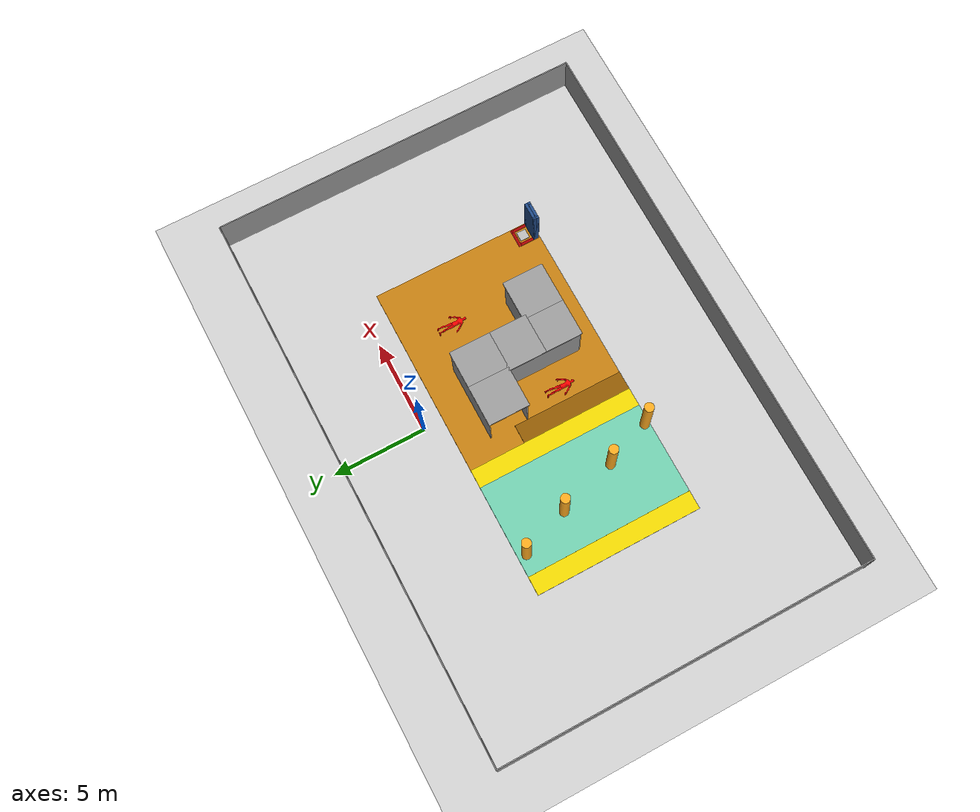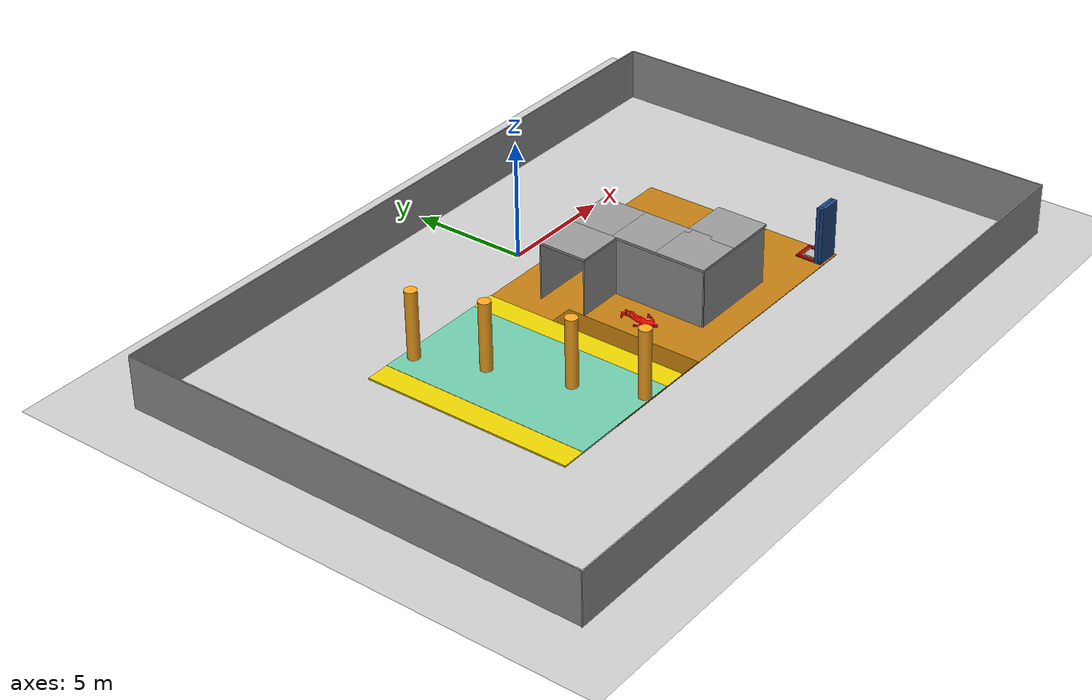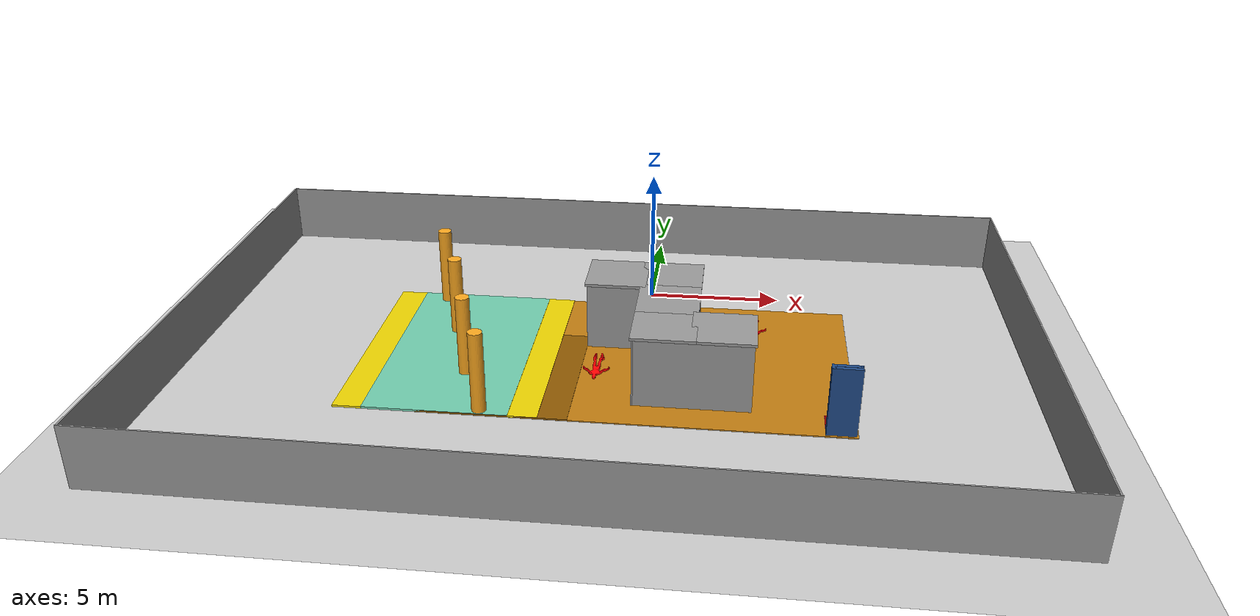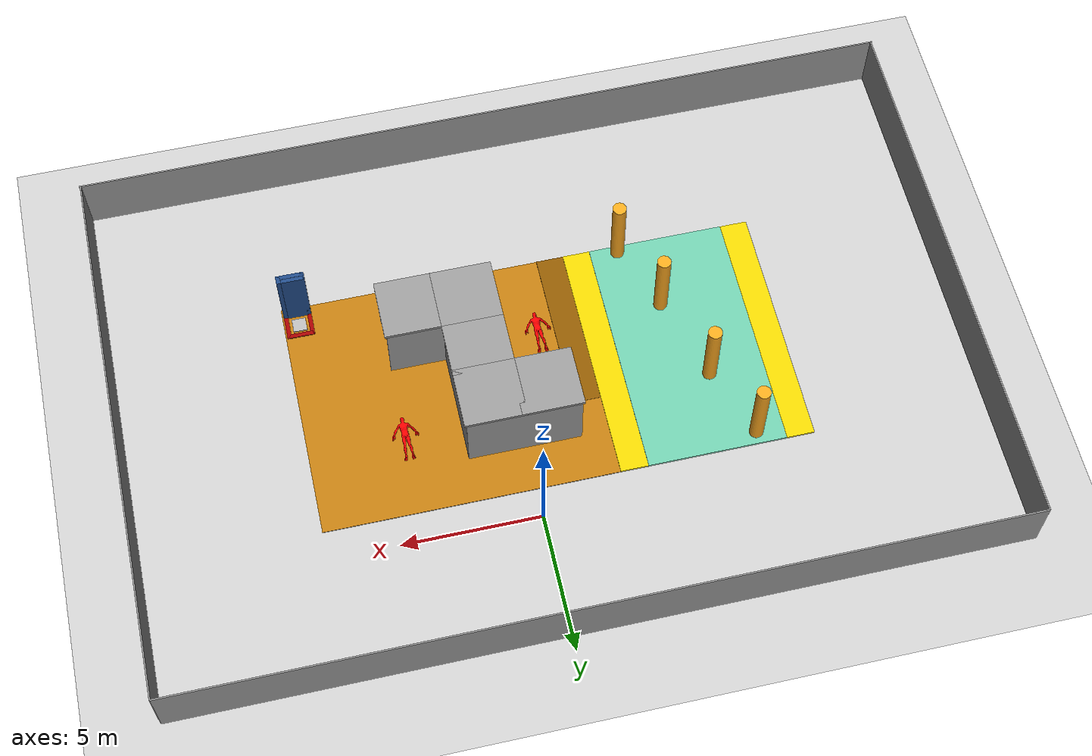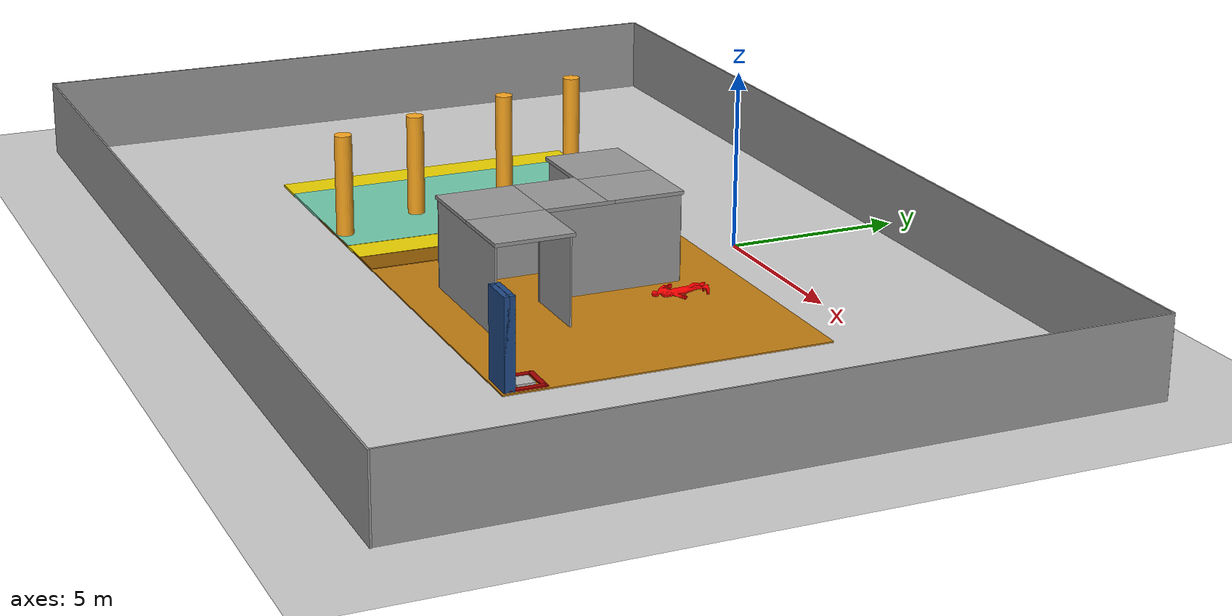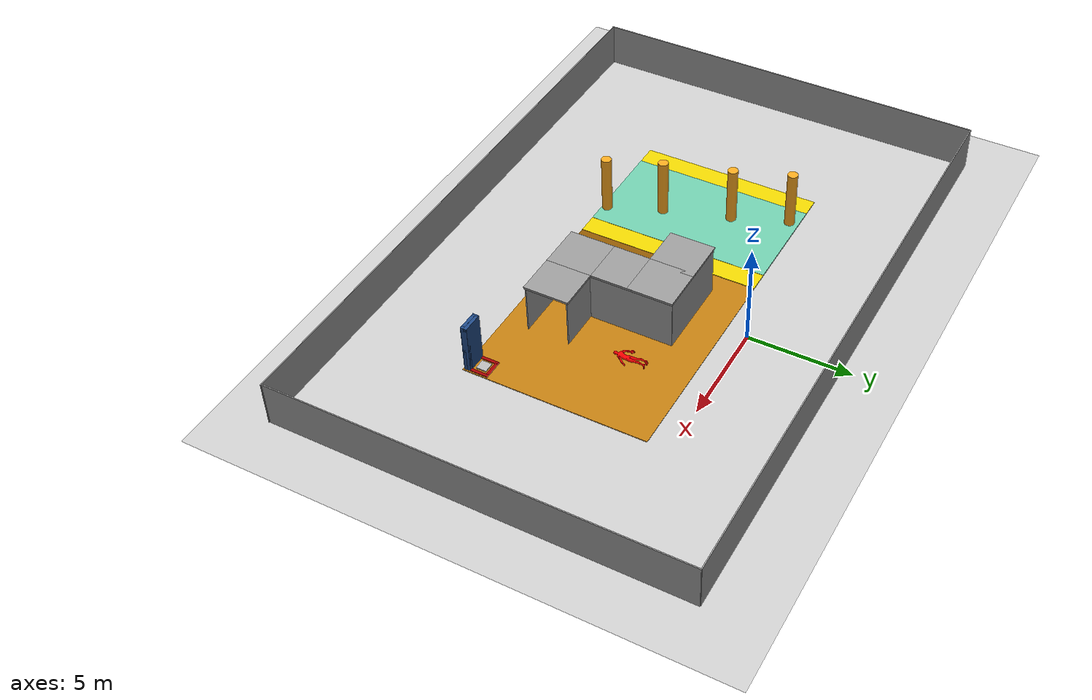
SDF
<sdf version="1.6">
 <world name="mission1">
  <scene>
   <sky><clouds><speed>12</speed></clouds></sky>
   <shadows>1</shadows>
   <fog>
    <color>0.8 0.8 0.8 1.0</color>
    <type>linear</type>
    <density>0</density>
    <start>10000.0</start>
    <end>30000.0</end>
   </fog>
  </scene>
  <include><uri>model://sun</uri></include>
  <include><uri>model://ground_plane</uri></include>
  <include><uri>model://2020_base_m4</uri><pose>-1.24763 -5.54199 0 0 -0 0</pose></include>
  <include>
   <name>1</name>
   <uri>model://2020_bonequinho_50kg</uri>
   <pose>-3.622880 -5.944703 -7.642968 1.589498 0 0</pose>
  </include>
  <include>
   <name>2</name>
   <uri>model://2020_bonequinho_50kg</uri>
   <pose>1.824439 -2.948833 -7.474866 1.556342 0 0</pose>
  </include>
  <include>
   <name>3</name>
   <uri>model://2020_bonequinho_50kg</uri>
   <pose>-1.707760 -3.192324 -7.692424 1.549182 0 0</pose>
  </include>
  <include><uri>model://2020_fanAndHeliport</uri><pose>6.94427 -9.39548 -0 0 -0 3.13599</pose></include>
  <include><uri>model://2020_house1_imav2020</uri><pose>1.02363 -5.7654 0 0 -0 0</pose></include>
  <include>
   <name>H</name>
   <uri>model://H</uri>
   <pose>6.938190 -9.295987 0 0 0 0</pose>
   <scale>2 2 2</scale>
  </include>
  <include>
   <uri>model://orange_pole</uri>
   <name>obstacle_0</name>
   <pose>-8 -1.5 1.5 0 -0 0</pose>
   <plugin name="dynamic_obstacle" filename="libdynamic_obstacle.so">
    <point_0>-8 -1.5 1.5</point_0>
    <point_1>-8 -9.7811 1.5</point_1>
    <vel>2.0</vel>
   </plugin>
  </include>
  <include>
   <uri>model://orange_pole</uri>
   <name>obstacle_1</name>
   <pose>-5 -9.7811 1.5 0 -0 0</pose>
   <plugin name="dynamic_obstacle" filename="libdynamic_obstacle.so">
    <point_0>-5 -1.5 1.5</point_0>
    <point_1>-5 -9.7811 1.5</point_1>
    <vel>2.0</vel>
   </plugin>
  </include>
  <include>
   <uri>model://orange_pole</uri>
   <name>obstacle_2</name>
   <pose>-7 -4.11179 1.5 0 -0 0</pose>
   <plugin name="dynamic_obstacle" filename="libdynamic_obstacle.so">
    <point_0>-7 -1.5 1.5</point_0>
    <point_1>-7 -9.7811 1.5</point_1>
    <vel>2.0</vel>
   </plugin>
  </include>
  <include>
   <uri>model://orange_pole</uri>
   <name>obstacle_3</name>
   <pose>-6 -7.27055 1.5 0 -0 0</pose>
   <plugin name="dynamic_obstacle" filename="libdynamic_obstacle.so">
    <point_0>-6 -1.5 1.5</point_0>
    <point_1>-6 -9.7811 1.5</point_1>
    <vel>2.0</vel>
   </plugin>
  </include>
  <include><uri>model://2020_imav_indoor_finished</uri><pose>-1.24763 -5.54199 -0.3 0 -0 0</pose></include>
 </world>
</sdf>

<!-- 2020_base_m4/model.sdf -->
<sdf version='1.6'>
  <model name='base_m4'>
    <pose frame=''>8.75 4.5 0 0 -0 0</pose>
    <link name='Wall_11'>
      <collision name='Wall_11_Collision'>
        <geometry>
          <box>
            <size>6 6 0.06</size>
          </box>
        </geometry>
        <pose frame=''>0 0 0.03 0 -0 0</pose>
      </collision>
      <visual name='Wall_11_Visual'>
        <pose frame=''>0 0 0.03 0 -0 0</pose>
        <geometry>
          <box>
            <size>6 6 0.06</size>
          </box>
        </geometry>
        <material>
          <script>
            <uri>file://media/materials/scripts/gazebo.material</uri>
            <name>Gazebo/Grey</name>
          </script>
          <ambient>0.560784 0.34902 0.00784314 1</ambient>
        </material>
        <meta>
          <layer>0</layer>
        </meta>
      </visual>
      <pose frame=''>-3.75 -1.5 0 0 -0 0</pose>
    </link>
    <link name='Wall_3'>
      <collision name='Wall_3_Collision'>
        <geometry>
          <box>
            <size>9 1 0.07</size>
          </box>
        </geometry>
        <pose frame=''>0 0 0.035 0 -0 0</pose>
      </collision>
      <visual name='Wall_3_Visual'>
        <pose frame=''>0 0 0.035 0 -0 0</pose>
        <geometry>
          <box>
            <size>9 1 0.07</size>
          </box>
        </geometry>
        <material>
          <script>
            <uri>file://media/materials/scripts/gazebo.material</uri>
            <name>Gazebo/Grey</name>
          </script>
          <ambient>0.929412 0.831373 0 1</ambient>
        </material>
        <meta>
          <layer>0</layer>
        </meta>
      </visual>
      <pose frame=''>-8.25 0 0 0 -0 1.5708</pose>
    </link>
    <link name='Wall_5'>
      <collision name='Wall_5_Collision'>
        <geometry>
          <box>
            <size>9 5 0.08</size>
          </box>
        </geometry>
        <pose frame=''>0 0 0.04 0 -0 0</pose>
      </collision>
      <visual name='Wall_5_Visual'>
        <pose frame=''>0 0 0.04 0 -0 0</pose>
        <geometry>
          <box>
            <size>9 5 0.08</size>
          </box>
        </geometry>
        <material>
          <script>
            <uri>file://media/materials/scripts/gazebo.material</uri>
            <name>Gazebo/Grey</name>
          </script>
          <ambient>0.435294 0.796078 0.67451 1</ambient>
        </material>
        <meta>
          <layer>0</layer>
        </meta>
      </visual>
      <pose frame=''>-5.25 0 0 0 -0 1.5708</pose>
    </link>
    <link name='Wall_7'>
      <collision name='Wall_7_Collision'>
        <geometry>
          <box>
            <size>9 1 0.07</size>
          </box>
        </geometry>
        <pose frame=''>0 0 0.035 0 -0 0</pose>
      </collision>
      <visual name='Wall_7_Visual'>
        <pose frame=''>0 0 0.035 0 -0 0</pose>
        <geometry>
          <box>
            <size>9 1 0.07</size>
          </box>
        </geometry>
        <material>
          <script>
            <uri>file://media/materials/scripts/gazebo.material</uri>
            <name>Gazebo/Grey</name>
          </script>
          <ambient>0.929412 0.831373 0 1</ambient>
        </material>
        <meta>
          <layer>0</layer>
        </meta>
      </visual>
      <pose frame=''>-2.25 0 0 0 -0 1.5708</pose>
    </link>
    <link name='Wall_9'>
      <collision name='Wall_9_Collision'>
        <geometry>
          <box>
            <size>10.5 9 0.04</size>
          </box>
        </geometry>
        <pose frame=''>0 0 0.02 0 -0 0</pose>
      </collision>
      <visual name='Wall_9_Visual'>
        <pose frame=''>0 0 0.02 0 -0 0</pose>
        <geometry>
          <box>
            <size>10.5 9 0.04</size>
          </box>
        </geometry>
        <material>
          <script>
            <uri>file://media/materials/scripts/gazebo.material</uri>
            <name>Gazebo/Grey</name>
          </script>
          <ambient>0.756863 0.490196 0.0666667 1</ambient>
        </material>
        <meta>
          <layer>0</layer>
        </meta>
      </visual>
      <pose frame=''>3.5 0 0 0 -0 0</pose>
    </link>
    <static>1</static>
  </model>
</sdf>

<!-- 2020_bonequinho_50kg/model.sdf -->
<sdf version='1.6'>
  <model name='bonequinho_50kg'>
    <link name='link_0'>
      <inertial>
        <mass>50</mass>
        <inertia>
          <ixx>0</ixx>
          <ixy>0</ixy>
          <ixz>0</ixz>
          <iyy>0</iyy>
          <iyz>0</iyz>
          <izz>0</izz>
        </inertia>
        <pose frame=''>0 0 0 0 -0 0</pose>
      </inertial>
      <pose frame=''>-0 0 0 0 -0 0</pose>
      <self_collide>0</self_collide>
      <enable_wind>0</enable_wind>
      <kinematic>0</kinematic>
      <gravity>1</gravity>
      <visual name='visual'>
        <pose frame=''>0 0 0 0 -0 0</pose>
        <geometry>
          <mesh>
            <uri>model://2020_bonequinho_50kg/meshes/bonequinho.dae</uri>
            <scale>1 1 1</scale>
          </mesh>
        </geometry>
        <material>
          <lighting>1</lighting>
          <script>
            <uri>file://media/materials/scripts/gazebo.material</uri>
            <name>Gazebo/Grey</name>
          </script>
          <shader type='vertex'>
            <normal_map>__default__</normal_map>
          </shader>
          <ambient>1 0 0 1</ambient>
          <diffuse>0.7 0.7 0.7 1</diffuse>
          <specular>0.01 0.01 0.01 1</specular>
          <emissive>1 0 0 1</emissive>
        </material>
        <transparency>0</transparency>
        <cast_shadows>1</cast_shadows>
      </visual>
      <collision name='collision'>
        <laser_retro>0</laser_retro>
        <max_contacts>10</max_contacts>
        <pose frame=''>0 0 0 0 -0 0</pose>
        <geometry>
          <mesh>
            <uri>model://2020_bonequinho_50kg/meshes/bonequinho.dae</uri>
            <scale>1 1 1</scale>
          </mesh>
        </geometry>
        <surface>
          <friction>
            <ode>
              <mu>1</mu>
              <mu2>1</mu2>
              <fdir1>0 0 0</fdir1>
              <slip1>0</slip1>
              <slip2>0</slip2>
            </ode>
            <torsional>
              <coefficient>1</coefficient>
              <patch_radius>0</patch_radius>
              <surface_radius>0</surface_radius>
              <use_patch_radius>1</use_patch_radius>
              <ode>
                <slip>0</slip>
              </ode>
            </torsional>
          </friction>
          <bounce>
            <restitution_coefficient>0</restitution_coefficient>
            <threshold>1e+06</threshold>
          </bounce>
          <contact>
            <collide_without_contact>0</collide_without_contact>
            <collide_without_contact_bitmask>1</collide_without_contact_bitmask>
            <collide_bitmask>1</collide_bitmask>
            <ode>
              <soft_cfm>0</soft_cfm>
              <soft_erp>0.2</soft_erp>
              <kp>1e+13</kp>
              <kd>1</kd>
              <max_vel>0.01</max_vel>
              <min_depth>0</min_depth>
            </ode>
            <bullet>
              <split_impulse>1</split_impulse>
              <split_impulse_penetration_threshold>-0.01</split_impulse_penetration_threshold>
              <soft_cfm>0</soft_cfm>
              <soft_erp>0.2</soft_erp>
              <kp>1e+13</kp>
              <kd>1</kd>
            </bullet>
          </contact>
        </surface>
      </collision>
    </link>
    <static>0</static>
    <allow_auto_disable>1</allow_auto_disable>
  </model>
</sdf>

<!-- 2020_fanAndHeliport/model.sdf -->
<sdf version='1.6'>
  <model name='fanAndHeliport'>
    <pose frame=''>0 0 0 0 -0 0</pose>
    <link name='Wall_12'>
      <collision name='Wall_12_Collision'>
        <geometry>
          <box>
            <size>1 0.15 0.085</size>
          </box>
        </geometry>
        <pose frame=''>0 0 0.0425 0 -0 0</pose>
      </collision>
      <visual name='Wall_12_Visual'>
        <pose frame=''>0 0 0.0425 0 -0 0</pose>
        <geometry>
          <box>
            <size>1 0.15 0.085</size>
          </box>
        </geometry>
        <material>
          <script>
            <uri>file://media/materials/scripts/gazebo.material</uri>
            <name>Gazebo/Grey</name>
          </script>
          <ambient>0.643137 0 0 1</ambient>
        </material>
        <meta>
          <layer>0</layer>
        </meta>
      </visual>
      <pose frame=''>-0.425 -0.07725 0 0 -0 -1.5708</pose>
    </link>
    <link name='Wall_13'>
      <collision name='Wall_13_Collision'>
        <geometry>
          <box>
            <size>1 0.15 0.085</size>
          </box>
        </geometry>
        <pose frame=''>0 0 0.0425 0 -0 0</pose>
      </collision>
      <visual name='Wall_13_Visual'>
        <pose frame=''>0 0 0.0425 0 -0 0</pose>
        <geometry>
          <box>
            <size>1 0.15 0.085</size>
          </box>
        </geometry>
        <material>
          <script>
            <uri>file://media/materials/scripts/gazebo.material</uri>
            <name>Gazebo/Grey</name>
          </script>
          <ambient>0.643137 0 0 1</ambient>
        </material>
        <meta>
          <layer>0</layer>
        </meta>
      </visual>
      <pose frame=''>-0 -0.50225 0 0 -0 0</pose>
    </link>
    <link name='Wall_14'>
      <collision name='Wall_14_Collision'>
        <geometry>
          <box>
            <size>1 0.15 0.085</size>
          </box>
        </geometry>
        <pose frame=''>0 0 0.0425 0 -0 0</pose>
      </collision>
      <visual name='Wall_14_Visual'>
        <pose frame=''>0 0 0.0425 0 -0 0</pose>
        <geometry>
          <box>
            <size>1 0.15 0.085</size>
          </box>
        </geometry>
        <material>
          <script>
            <uri>file://media/materials/scripts/gazebo.material</uri>
            <name>Gazebo/Grey</name>
          </script>
          <ambient>0.643137 0 0 1</ambient>
        </material>
        <meta>
          <layer>0</layer>
        </meta>
      </visual>
      <pose frame=''>0.425 -0.07725 0 0 -0 1.5708</pose>
    </link>
    <link name='Wall_2'>
      <collision name='Wall_2_Collision'>
        <geometry>
          <box>
            <size>1 0.15 2.5</size>
          </box>
        </geometry>
        <pose frame=''>0 0 1.25 0 -0 0</pose>
      </collision>
      <visual name='Wall_2_Visual'>
        <pose frame=''>0 0 1.25 0 -0 0</pose>
        <geometry>
          <box>
            <size>1 0.15 2.5</size>
          </box>
        </geometry>
        <material>
          <script>
            <uri>file://media/materials/scripts/gazebo.material</uri>
            <name>Gazebo/Grey</name>
          </script>
          <ambient>0.12549 0.290196 0.529412 1</ambient>
        </material>
        <meta>
          <layer>0</layer>
        </meta>
      </visual>
      <pose frame=''>-0 0.50225 0 0 -0 3.14159</pose>
    </link>
    <link name='Wall_3'>
      <collision name='Wall_3_Collision'>
        <geometry>
          <box>
            <size>0.293 0.15 2.5</size>
          </box>
        </geometry>
        <pose frame=''>0 0 1.25 0 -0 0</pose>
      </collision>
      <visual name='Wall_3_Visual'>
        <pose frame=''>0 0 1.25 0 -0 0</pose>
        <geometry>
          <box>
            <size>0.293 0.15 2.5</size>
          </box>
        </geometry>
        <material>
          <script>
            <uri>file://media/materials/scripts/gazebo.material</uri>
            <name>Gazebo/Grey</name>
          </script>
          <ambient>0.12549 0.290196 0.529412 1</ambient>
        </material>
        <meta>
          <layer>0</layer>
        </meta>
      </visual>
      <pose frame=''>-0.425 0.41925 0 0 -0 -1.5708</pose>
    </link>
    <link name='Wall_4'>
      <collision name='Wall_4_Collision'>
        <geometry>
          <box>
            <size>1 0.15 2.5</size>
          </box>
        </geometry>
        <pose frame=''>0 0 1.25 0 -0 0</pose>
      </collision>
      <visual name='Wall_4_Visual'>
        <pose frame=''>0 0 1.25 0 -0 0</pose>
        <geometry>
          <box>
            <size>1 0.15 2.5</size>
          </box>
        </geometry>
        <material>
          <script>
            <uri>file://media/materials/scripts/gazebo.material</uri>
            <name>Gazebo/Grey</name>
          </script>
          <ambient>0.12549 0.290196 0.529412 1</ambient>
        </material>
        <meta>
          <layer>0</layer>
        </meta>
      </visual>
      <pose frame=''>-0 0.34775 0 0 -0 0</pose>
    </link>
    <link name='Wall_5'>
      <collision name='Wall_5_Collision'>
        <geometry>
          <box>
            <size>0.293 0.15 2.5</size>
          </box>
        </geometry>
        <pose frame=''>0 0 1.25 0 -0 0</pose>
      </collision>
      <visual name='Wall_5_Visual'>
        <pose frame=''>0 0 1.25 0 -0 0</pose>
        <geometry>
          <box>
            <size>0.293 0.15 2.5</size>
          </box>
        </geometry>
        <material>
          <script>
            <uri>file://media/materials/scripts/gazebo.material</uri>
            <name>Gazebo/Grey</name>
          </script>
          <ambient>0.12549 0.290196 0.529412 1</ambient>
        </material>
        <meta>
          <layer>0</layer>
        </meta>
      </visual>
      <pose frame=''>0.425 0.41925 0 0 -0 1.5708</pose>
    </link>
    <static>1</static>
  </model>
</sdf>

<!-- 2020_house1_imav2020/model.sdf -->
<sdf version='1.6'>
  <model name='house_1'>
    <pose frame=''>0 0 0 0 -0 0</pose>

    <!-- Walls -->
    <link name='Wall_100'>
      <collision name='Wall_100_Collision'>
        <geometry>
          <box>
            <size>4.1 0.05 2.5</size>
          </box>
        </geometry>
        <pose frame=''>0 0 1.25 0 -0 0</pose>
      </collision>
      <visual name='Wall_100_Visual'>
        <pose frame=''>0 0 1.25 0 -0 0</pose>
        <geometry>
          <box>
            <size>4.1 0.05 2.5</size>
          </box>
        </geometry>
        <material>
          <script>
            <uri>file://media/materials/scripts/gazebo.material</uri>
            <name>Gazebo/Grey</name>
          </script>
          <ambient>1 1 1 1</ambient>
        </material>
        <meta>
          <layer>0</layer>
        </meta>
      </visual>
      <pose frame=''>-1 -1.025 0 0 -0 1.5708</pose>
    </link>

    <link name='Wall_102'>
      <collision name='Wall_102_Collision'>
        <geometry>
          <box>
            <size>2.05 0.05 2.5</size>
          </box>
        </geometry>
        <pose frame=''>0 0 1.25 0 -0 0</pose>
      </collision>
      <visual name='Wall_102_Visual'>
        <pose frame=''>0 0 1.25 0 -0 0</pose>
        <geometry>
          <box>
            <size>2.05 0.05 2.5</size>
          </box>
        </geometry>
        <material>
          <script>
            <uri>file://media/materials/scripts/gazebo.material</uri>
            <name>Gazebo/Grey</name>
          </script>
          <ambient>1 1 1 1</ambient>
        </material>
        <meta>
          <layer>0</layer>
        </meta>
      </visual>
      <pose frame=''>-2 1 0 0 -0 3.14159</pose>
    </link>

    <link name='Wall_81'>
      <collision name='Wall_81_Collision'>
        <geometry>
          <box>
            <size>4.05 0.05 2.5</size>
          </box>
        </geometry>
        <pose frame=''>0 0 1.25 0 -0 0</pose>
      </collision>
      <visual name='Wall_81_Visual'>
        <pose frame=''>0 0 1.25 0 -0 0</pose>
        <geometry>
          <box>
            <size>4.05 0.05 2.5</size>
          </box>
        </geometry>
        <material>
          <script>
            <uri>file://media/materials/scripts/gazebo.material</uri>
            <name>Gazebo/Grey</name>
          </script>
          <ambient>1 1 1 1</ambient>
        </material>
        <meta>
          <layer>0</layer>
        </meta>
      </visual>
      <pose frame=''>-1 3.05 0 0 -0 0</pose>
    </link>

    <link name='Wall_83'>
      <collision name='Wall_83_Collision'>
        <geometry>
          <box>
            <size>4.1 0.05 2.5</size>
          </box>
        </geometry>
        <pose frame=''>0 0 1.25 0 -0 0</pose>
      </collision>
      <visual name='Wall_83_Visual'>
        <pose frame=''>0 0 1.25 0 -0 0</pose>
        <geometry>
          <box>
            <size>4.1 0.05 2.5</size>
          </box>
        </geometry>
        <material>
          <script>
            <uri>file://media/materials/scripts/gazebo.material</uri>
            <name>Gazebo/Grey</name>
          </script>
          <ambient>1 1 1 1</ambient>
        </material>
        <meta>
          <layer>0</layer>
        </meta>
      </visual>
      <pose frame=''>1 1.01005 0 0 -0 -1.5708</pose>
    </link>

    <link name='Wall_94'>
      <collision name='Wall_94_Collision'>
        <geometry>
          <box>
            <size>2.05 0.05 2.5</size>
          </box>
        </geometry>
        <pose frame=''>0 0 1.25 0 -0 0</pose>
      </collision>
      <visual name='Wall_94_Visual'>
        <pose frame=''>0 0 1.25 0 -0 0</pose>
        <geometry>
          <box>
            <size>2.05 0.05 2.5</size>
          </box>
        </geometry>
        <material>
          <script>
            <uri>file://media/materials/scripts/gazebo.material</uri>
            <name>Gazebo/Grey</name>
          </script>
          <ambient>1 1 1 1</ambient>
        </material>
        <meta>
          <layer>0</layer>
        </meta>
      </visual>
      <pose frame=''>2 -1 0 0 -0 0</pose>
    </link>

    <link name='Wall_98'>
      <collision name='Wall_98_Collision'>
        <geometry>
          <box>
            <size>4.05 0.05 2.5</size>
          </box>
        </geometry>
        <pose frame=''>0 0 1.25 0 -0 0</pose>
      </collision>
      <visual name='Wall_98_Visual'>
        <pose frame=''>0 0 1.25 0 -0 0</pose>
        <geometry>
          <box>
            <size>4.05 0.05 2.5</size>
          </box>
        </geometry>
        <material>
          <script>
            <uri>file://media/materials/scripts/gazebo.material</uri>
            <name>Gazebo/Grey</name>
          </script>
          <ambient>1 1 1 1</ambient>
        </material>
        <meta>
          <layer>0</layer>
        </meta>
      </visual>
      <pose frame=''>1 -3.05 0 0 -0 3.14159</pose>
    </link>

    <!-- Ceiling -->
    <include>
        <uri>model://2020_2.2ceiling</uri>
        <name>ceiling_0</name>
        <pose>-2 2 2.5 0 0 0</pose>
    </include>

    <include>
        <uri>model://2020_2.2ceiling</uri>
        <name>ceiling_1</name>
        <pose>0 2 2.5 0 0 0</pose>
    </include>

    <include>
        <uri>model://2020_2.2ceiling</uri>
        <name>ceiling_2</name>
        <pose>0 0 2.5 0 0 0</pose>
    </include>

    <include>
        <uri>model://2020_2.2ceiling</uri>
        <name>ceiling_3</name>
        <pose>0 -2 2.5 0 0 0</pose>
    </include>

    <include>
        <uri>model://2020_2.2ceiling</uri>
        <name>ceiling_4</name>
        <pose>2 -2 2.5 0 0 0</pose>
    </include>

    <static>1</static>
  </model>
</sdf>

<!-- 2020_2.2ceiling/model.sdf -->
<sdf version='1.6'>
  <model name='2.2ceiling'>
    <pose frame=''>0 0 0 0 -0 0</pose>
    <link name='Wall_175'>
      <collision name='Wall_175_Collision'>
        <geometry>
          <box>
            <size>2.21 2.2 0.1</size>
          </box>
        </geometry>
        <pose frame=''>0 0 0.05 0 -0 0</pose>
      </collision>
      <visual name='Wall_175_Visual'>
        <pose frame=''>0 0 0.05 0 -0 0</pose>
        <geometry>
          <box>
            <size>2.21 2.2 0.1</size>
          </box>
        </geometry>
        <material>
          <script>
            <uri>file://media/materials/scripts/gazebo.material</uri>
            <name>Gazebo/Grey</name>
          </script>
          <ambient>1 1 1 1</ambient>
        </material>
        <meta>
          <layer>0</layer>
        </meta>
      </visual>
      <pose frame=''>-0 0 0 0 -0 -1.5708</pose>
    </link>
    <static>1</static>
  </model>
</sdf>

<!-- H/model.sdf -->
<sdf version="1.6">
  <model name="new_H">
    <static>true</static>
    <link name="H_link">
      <visual name="visual_H">
        <cast_shadows>true</cast_shadows>
        <geometry>
          <mesh>
            <uri>model://H/meshes/Plane.dae</uri>
          </mesh>
        </geometry>
        <material>
          <script>
            <uri>file://H/materials/scripts</uri>
            <uri>file://H/materials/textures</uri>
            <name>letra/H</name>
          </script>
        </material>
      </visual>
      <collision name="collision_H">
        <geometry>
          <mesh>
            <uri>model://H/meshes/Plane.dae</uri>
          </mesh>
        </geometry>
      </collision>
    </link>
  </model>
</sdf>

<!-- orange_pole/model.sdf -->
<sdf version='1.6'>

  <model name='orange_pole'>

    <pose>0 0 1.5 0 0 0</pose>
    <link name='pole'>
      <inertial>
        <mass>1</mass>
        <inertia>
          <ixx>0.145833</ixx>
          <iyy>0.145833</iyy>
          <izz>0.125</izz>
          <ixy>0</ixy>
          <ixz>0</ixz>
          <iyz>0</iyz>
        </inertia>
      </inertial>

      <gravity>0</gravity>
      <self_collide>0</self_collide>
      <kinematic>0</kinematic>
      <enable_wind>true</enable_wind>

      <visual name='pole_visual'>
        <geometry>
          <cylinder>
            <radius>0.25</radius>
            <length>3</length>
          </cylinder>
        </geometry>
        <material>
          <lighting>1</lighting>
          <script>
            <uri>file://media/materials/scripts/gazebo.material</uri>
            <name>Gazebo/Grey</name>
          </script>
          <shader type='vertex'>
            <normal_map>__default__</normal_map>
          </shader>
          <ambient>0.88 0.59 0.11 1</ambient>
          <diffuse>0.99 0.66 0.12 1</diffuse>
          <specular>0.01 0.01 0.01 1</specular>
          <emissive>0 0 0 1</emissive>

        </material>
        <transparency>0</transparency>
        <cast_shadows>1</cast_shadows>
      </visual>

      <collision name='collision'>
        <geometry>
          <cylinder>
            <radius>0.25</radius>
            <length>3</length>
          </cylinder>
        </geometry>
      </collision>
    </link>

    <static>0</static>

    <!-- Dynamic obstacle plugin -->
  </model>
</sdf>

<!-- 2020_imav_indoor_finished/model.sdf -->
<sdf version='1.6'>
  <model name='2020_imav_indoor_finished'>
    <pose frame=''>0 0 0 0 -0 0</pose>

    <!-- CHAO -->

    <!-- PAREDE ESQUERDA -->
    <link name='Wall_104'>
      <collision name='Wall_104_Collision'>
        <geometry>
          <box>
            <size>0.05 30 2.5</size>
          </box>
        </geometry>
        <pose frame=''>0 0 1.25 0 -0 0</pose>
      </collision>
      <visual name='Wall_104_Visual'>
        <pose frame=''>0 0 1.25 0 -0 0</pose>
        <geometry>
          <box>
            <size>0.05 30 2.5</size>
          </box>
        </geometry>
        <material>
          <script>
            <uri>file://media/materials/scripts/gazebo.material</uri>
            <name>Gazebo/Grey</name>
          </script>
          <ambient>1 1 1 1</ambient>
        </material>
        <meta>
          <layer>0</layer>
        </meta>
      </visual>
      <pose frame=''>0 10 0 0 -0 1.5708</pose>
    </link>

    <!-- PAREDE DIREITA -->
    <link name='Wall_103'>
      <collision name='Wall_103_Collision'>
        <geometry>
          <box>
            <size>0.05 30.1 2.5</size>
          </box>
        </geometry>
        <pose frame=''>0 0 1.25 0 -0 0</pose>
      </collision>
      <visual name='Wall_103_Visual'>
        <pose frame=''>0 0 1.25 0 -0 0</pose>
        <geometry>
          <box>
            <size>0.05 30.1 2.5</size>
          </box>
        </geometry>
        <material>
          <script>
            <uri>file://media/materials/scripts/gazebo.material</uri>
            <name>Gazebo/Grey</name>
          </script>
          <ambient>1 1 1 1</ambient>
        </material>
        <meta>
          <layer>0</layer>
        </meta>
      </visual>
      <pose frame=''>0 -10 0 0 -0 1.5708</pose>
    </link>

    <!-- PAREDE CIMA -->
    <link name='Wall_102'>
      <collision name='Wall_102_Collision'>
        <geometry>
          <box>
            <size>20 0.05 2.5</size>
          </box>
        </geometry>
        <pose frame=''>0 0 1.25 0 -0 0</pose>
      </collision>
      <visual name='Wall_102_Visual'>
        <pose frame=''>0 0 1.25 0 -0 0</pose>
        <geometry>
          <box>
            <size>20 0.05 2.5</size>
          </box>
        </geometry>
        <material>
          <script>
            <uri>file://media/materials/scripts/gazebo.material</uri>
            <name>Gazebo/Grey</name>
          </script>
          <ambient>1 1 1 1</ambient>
        </material>
        <meta>
          <layer>0</layer>
        </meta>
      </visual>
      <pose frame=''>15 0 0 0 -0 1.5708</pose>
    </link>

    <!-- PAREDE BAIXO -->
    <link name='Wall_101'>
      <collision name='Wall_101_Collision'>
        <geometry>
          <box>
            <size>20 0.05 2.5</size>
          </box>
        </geometry>
        <pose frame=''>0 0 1.25 0 -0 0</pose>
      </collision>
      <visual name='Wall_101_Visual'>
        <pose frame=''>0 0 1.25 0 -0 0</pose>
        <geometry>
          <box>
            <size>20 0.05 2.5</size>
          </box>
        </geometry>
        <material>
          <script>
            <uri>file://media/materials/scripts/gazebo.material</uri>
            <name>Gazebo/Grey</name>
          </script>
          <ambient>1 1 1 1</ambient>
        </material>
        <meta>
          <layer>0</layer>
        </meta>
      </visual>
      <pose frame=''>-15 0 0 0 -0 1.5708</pose>
    </link>

  </model>
</sdf>
